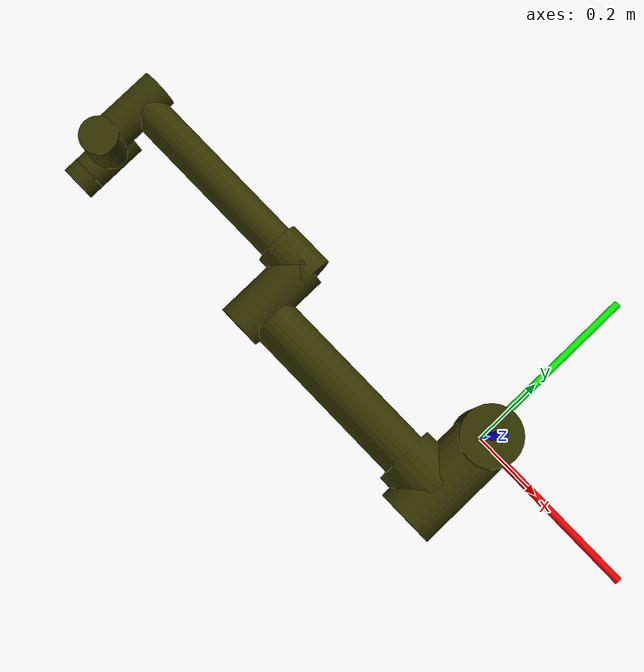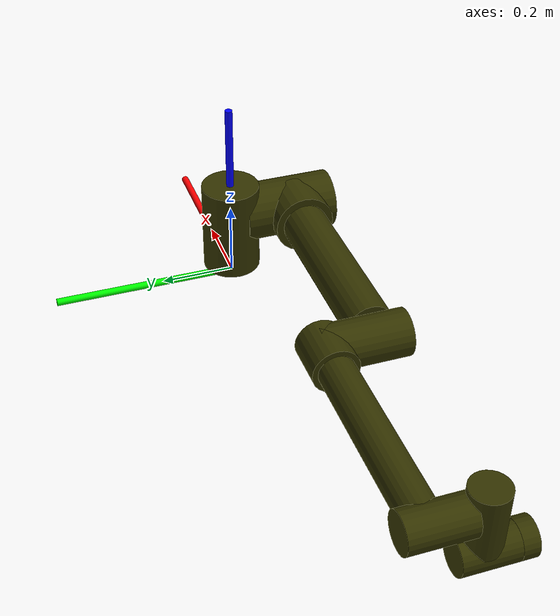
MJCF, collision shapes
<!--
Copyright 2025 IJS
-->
<mujoco model="ur10e">
  <compiler angle="radian" meshdir="assets/" autolimits="true"/>

  <option integrator="implicitfast" timestep="0.001"/>

  <default>
    <default class="robot">
      <material specular="0.5" shininess="0.25"/>
      <joint axis="0 1 0" range="-6.28319 6.28319" armature="0.1"/>
      <position ctrlrange="-6.2831 6.2831"/>
      <general biastype="affine" ctrlrange="-6.2831 6.2831" gainprm="5000" biasprm="0 -5000 -500"/>
      <default class="size4">
        <joint damping="10"/>
        <general forcerange="-330 330"/>
      </default>
      <default class="size3">
        <joint damping="5"/>
        <general forcerange="-150 150"/>
        <default class="size3_limited">
          <joint range="-3.1415 3.1415"/>
          <general ctrlrange="-3.1415 3.1415"/>
        </default>
      </default>
      <default class="size2">
        <joint damping="2"/>
        <general forcerange="-56 56"/>
      </default>
      <default class="visual">
        <geom type="mesh" contype="0" conaffinity="0" group="2"/>
      </default>
      <default class="collision">
        <geom type="cylinder" group="3"  rgba="0.2 .2 0 1"/>
      </default>
      <site size="0.001" rgba="0.5 0.5 0.5 0.3" group="4"/>
    </default>
  </default>

  <asset>
    <material class="robot" name="black" rgba="0.033 0.033 0.033 1"/>
    <material class="robot" name="jointgray" rgba="0.278 0.278 0.278 1"/>
    <material class="robot" name="linkgray" rgba="0.82 0.82 0.82 1"/>
    <material class="robot" name="urblue" rgba="0.49 0.678 0.8 1"/>

    <mesh file="ur10e/base_0.obj"/>
    <mesh file="ur10e/base_1.obj"/>
    <mesh file="ur10e/shoulder_0.obj"/>
    <mesh file="ur10e/shoulder_1.obj"/>
    <mesh file="ur10e/shoulder_2.obj"/>
    <mesh file="ur10e/upperarm_0.obj"/>
    <mesh file="ur10e/upperarm_1.obj"/>
    <mesh file="ur10e/upperarm_2.obj"/>
    <mesh file="ur10e/upperarm_3.obj"/>
    <mesh file="ur10e/forearm_0.obj"/>
    <mesh file="ur10e/forearm_1.obj"/>
    <mesh file="ur10e/forearm_2.obj"/>
    <mesh file="ur10e/forearm_3.obj"/>
    <mesh file="ur10e/wrist1_0.obj"/>
    <mesh file="ur10e/wrist1_1.obj"/>
    <mesh file="ur10e/wrist1_2.obj"/>
    <mesh file="ur10e/wrist2_0.obj"/>
    <mesh file="ur10e/wrist2_1.obj"/>
    <mesh file="ur10e/wrist2_2.obj"/>
    <mesh file="ur10e/wrist3.obj"/>
  </asset>

  <worldbody>
    <body name="base" pos="0 0 0" childclass="robot">
      <site name="x" group="1" pos="0.25 0 0" quat="0.707107 0 0.707107 0" size="0.01 0.25" type="cylinder" rgba="1 0 0 1"/>
      <site name="y" group="1" pos="0 0.25 0" quat="0.707107 0.707107 0 0" size="0.01 0.25" type="cylinder" rgba="0 1 0 1"/>
      <site name="z" group="1" pos="0 0 0.25" size="0.01 0.25" type="cylinder" rgba="0 0 1 1"/>
      <body name="base_link" pos="0 0 0" quat="0 0 0 1">
        <inertial pos="0 0 0" quat="0.5 0.5 -0.5 0.5" mass="3.761"  diaginertia="0.01125 0.00610633 0.00610633" />
        <geom mesh="base_0" material="black" class="visual"/>
        <geom mesh="base_1" material="jointgray" class="visual"/>
        <geom class="collision" size="0.078 0.125" pos="0 0 0.15"/>

        <body name="shoulder_link" pos="0 0 0.1807">
          <inertial pos="0.021 0.0 0.027" mass="7.369" diaginertia="0.0314743 0.0314743 0.0218756" />
          <joint name="shoulder_pan_joint" class="size4" axis="0 0 1"/>
          <geom mesh="shoulder_0" material="urblue" class="visual"/>
          <geom mesh="shoulder_1" material="black" class="visual"/>
          <geom mesh="shoulder_2" material="jointgray" class="visual"/>

          <body name="upper_arm_link" pos="0 0.17615 0" quat="0.707107 0 0.707107 0">
            <inertial pos="0.0 -0.0227 0.2327" mass="13.051" diaginertia="0.423074 0.423074 0.0363656" />
            <joint name="shoulder_lift_joint" class="size4"/>
            <geom mesh="upperarm_0" material="black" class="visual"/>
            <geom mesh="upperarm_1" material="jointgray" class="visual"/>
            <geom mesh="upperarm_2" material="urblue" class="visual"/>
            <geom mesh="upperarm_3" material="linkgray" class="visual"/>
            <geom class="collision" size="0.078 0.125" pos="0 -0.02 0" quat="0.707107 0.707107 0 0"/>
            <geom class="collision" size="0.08 0.055" pos="0 0 0.055"/>
            <geom class="collision" size="0.06 0.24" pos="0 0 0.33" />

            <body name="forearm_link" pos="0 -0.137 0.6127">
              <inertial pos="0 0.0289 0.3316" mass="3.989" diaginertia="0.11059 0.11059 0.0108844" />
              <joint name="elbow_joint" class="size3_limited"/>
              <geom mesh="forearm_0" material="urblue" class="visual"/>
              <geom mesh="forearm_1" material="black" class="visual"/>
              <geom mesh="forearm_2" material="jointgray" class="visual"/>
              <geom mesh="forearm_3" material="linkgray" class="visual"/>
              <geom class="collision" size="0.06 0.11" pos="0 0.1 0" quat="0.707107 0.707107 0 0"/>
              <geom class="collision" size="0.046 0.26" pos="0 0 0.30" />
              <geom class="collision" size="0.06 0.06" pos="0 0 0.025" />

              <body name="wrist_1_link" pos="0 0 0.57155" quat="0.707107 0 0.707107 0">
                <inertial  pos="0 0.142 0.018" quat="0.5 0.5 -0.5 0.5" mass="2.1" diaginertia="0.0055125 0.00510825 0.00510825" />
                <joint name="wrist_1_joint" class="size2"/>
                <geom mesh="wrist1_0" material="black" class="visual"/>
                <geom mesh="wrist1_1" material="urblue" class="visual"/>
                <geom mesh="wrist1_2" material="jointgray" class="visual"/>
                <geom class="collision" size="0.05 0.08" pos="0 0.02 0" quat="0.707107 0.707107 0 0" />

                <body name="wrist_2_link" pos="0 0.135 0">
                  <inertial pos="0 0.0180 0.1129" quat="0.5 0.5 -0.5 0.5" mass="1.98" diaginertia="0.0055125 0.00510825 0.00510825" />
                  <joint name="wrist_2_joint" axis="0 0 1" class="size2"/>
                  <geom mesh="wrist2_0" material="black" class="visual"/>
                  <geom mesh="wrist2_1" material="urblue" class="visual"/>
                  <geom mesh="wrist2_2" material="jointgray" class="visual"/>
                  <geom class="collision" size="0.048 0.085" pos="0 0 0.02"/>
                  <geom class="collision" size="0.048 0.07" pos="0 0.008 0.12" quat="0.707107 0.707107 0 0"/>

                  <body name="wrist_3_link" pos="0 0 0.11985">
                    <inertial pos="0 0.0905 0" quat="6.34592e-10 0.707107 -0.707107 6.34592e-10" mass="0.615" diaginertia="0.000204525 0.000144346 0.000144346" />
                    <joint name="wrist_3_joint" class="size2"/>
                    <geom material="linkgray" mesh="wrist3" class="visual"/>
                    <geom class="collision" size="0.048 0.02" pos="0 0.097 0" quat="0.707107 0.707107 0 0"/>

                    <body name="flange" pos="0 0.11655 0" quat="0.707107 -0.707107 0 0">
                      <site group="3" type="cylinder" pos="0.125 0 0" quat="0.70711 0 0.70711 0" size="0.005 0.125" rgba="1 0 0 1"/>
                      <site group="3" type="cylinder" pos="0 0.125 0" quat="0.70711 0.70711 0 0" size="0.005 0.125" rgba="0 1 0 1"/>
                      <site group="3" type="cylinder" pos="0 0 0.125" quat="1 0 0 0" size="0.005 0.125" rgba="0 0 1 1"/>
                      <site name="flange" pos="0 0 0"/>
                      <site name="TCP" pos="0 0 0"/>
                    </body>
                  </body>
                </body>
              </body>
            </body>
          </body>
        </body>
      </body>
    </body>
  </worldbody>

  <contact>
    <exclude body1="base_link" body2="upper_arm_link"/>
  </contact>

  <actuator>
    <general class="size4" name="shoulder_pan_actuator" joint="shoulder_pan_joint"/>
    <general class="size4" name="shoulder_lift_actuator" joint="shoulder_lift_joint"/>
    <general class="size3_limited" name="elbow_actuator" joint="elbow_joint"/>
    <general class="size2" name="wrist_1_actuator" joint="wrist_1_joint"/>
    <general class="size2" name="wrist_2_actuator" joint="wrist_2_joint"/>
    <general class="size2" name="wrist_3_actuator" joint="wrist_3_joint"/>
  </actuator>

  <sensor>
    <framepos name="pos" objtype="site" objname="TCP" />
    <framequat name="ori" objtype="site" objname="TCP" />
    <framelinvel name="v" objtype="site" objname="TCP" />
    <frameangvel name="w" objtype="site" objname="TCP" />
    <force name="force" site="TCP" noise="0.5" />
    <torque name="torque" site="TCP" noise="0.5" />
  </sensor>

  <keyframe>
    <key name="home" qpos="1.5708 -1.5708 -1.5708 0 1.5708 0" ctrl="1.5708 -1.5708 -1.5708 0 1.5708 0"/>
  </keyframe>
</mujoco>
